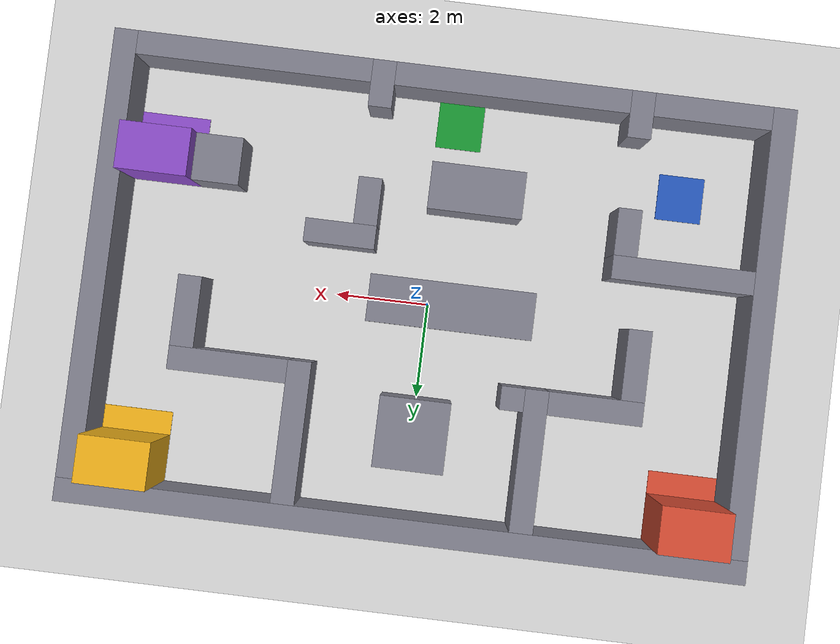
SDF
<?xml version="1.0" ?>
<sdf version="1.10">
  <world name="factory_maze">
    <physics name="step" type="ignored">
      <max_step_size>0.004</max_step_size>
      <real_time_factor>1.0</real_time_factor>
    </physics>
    <plugin filename="gz-sim-physics-system" name="gz::sim::systems::Physics"/>
    <plugin filename="gz-sim-scene-broadcaster-system" name="gz::sim::systems::SceneBroadcaster"/>
    <plugin filename="gz-sim-user-commands-system" name="gz::sim::systems::UserCommands"/>
    <plugin filename="gz-sim-contact-system" name="gz::sim::systems::Contact"/>
    <plugin filename="gz-sim-sensors-system" name="gz::sim::systems::Sensors">
      <render_engine>ogre2</render_engine>
    </plugin>
    <scene>
      <ambient>0.6 0.6 0.6 1</ambient>
      <background>0.7 0.8 0.9 1</background>
    </scene>
    <light type="directional" name="sun">
      <cast_shadows>true</cast_shadows>
      <pose>0 0 10 0 0 0</pose>
      <diffuse>0.9 0.9 0.9 1</diffuse>
      <specular>0.2 0.2 0.2 1</specular>
      <direction>-0.4 0.3 -0.9</direction>
    </light>
    <model name="ground_plane">
      <static>true</static>
      <link name="link">
        <collision name="collision">
          <geometry><plane><normal>0 0 1</normal><size>60 60</size></plane></geometry>
          <surface><friction><ode><mu>1.0</mu><mu2>1.0</mu2></ode></friction></surface>
        </collision>
        <visual name="visual">
          <geometry><plane><normal>0 0 1</normal><size>60 60</size></plane></geometry>
          <material><ambient>0.85 0.85 0.85 1</ambient><diffuse>0.85 0.85 0.85 1</diffuse></material>
        </visual>
      </link>
    </model>
    <model name='wall_0'><static>true</static><pose>0.000 4.750 0.500 0 0 0</pose><link name='l'><collision name='c'><geometry><box><size>14.500 0.500 1.000</size></box></geometry></collision><visual name='v'><geometry><box><size>14.500 0.500 1.000</size></box></geometry><material><ambient>0.5 0.5 0.55 1</ambient><diffuse>0.5 0.5 0.55 1</diffuse></material></visual></link></model>
    <model name='wall_1'><static>true</static><pose>-7.000 -0.250 0.500 0 0 0</pose><link name='l'><collision name='c'><geometry><box><size>0.500 9.500 1.000</size></box></geometry></collision><visual name='v'><geometry><box><size>0.500 9.500 1.000</size></box></geometry><material><ambient>0.5 0.5 0.55 1</ambient><diffuse>0.5 0.5 0.55 1</diffuse></material></visual></link></model>
    <model name='wall_2'><static>true</static><pose>-2.500 3.000 0.500 0 0 0</pose><link name='l'><collision name='c'><geometry><box><size>0.500 3.000 1.000</size></box></geometry></collision><visual name='v'><geometry><box><size>0.500 3.000 1.000</size></box></geometry><material><ambient>0.5 0.5 0.55 1</ambient><diffuse>0.5 0.5 0.55 1</diffuse></material></visual></link></model>
    <model name='wall_3'><static>true</static><pose>2.500 3.000 0.500 0 0 0</pose><link name='l'><collision name='c'><geometry><box><size>0.500 3.000 1.000</size></box></geometry></collision><visual name='v'><geometry><box><size>0.500 3.000 1.000</size></box></geometry><material><ambient>0.5 0.5 0.55 1</ambient><diffuse>0.5 0.5 0.55 1</diffuse></material></visual></link></model>
    <model name='wall_4'><static>true</static><pose>7.000 -0.250 0.500 0 0 0</pose><link name='l'><collision name='c'><geometry><box><size>0.500 9.500 1.000</size></box></geometry></collision><visual name='v'><geometry><box><size>0.500 9.500 1.000</size></box></geometry><material><ambient>0.5 0.5 0.55 1</ambient><diffuse>0.5 0.5 0.55 1</diffuse></material></visual></link></model>
    <model name='wall_5'><static>true</static><pose>0.000 2.750 0.500 0 0 0</pose><link name='l'><collision name='c'><geometry><box><size>1.500 1.500 1.000</size></box></geometry></collision><visual name='v'><geometry><box><size>1.500 1.500 1.000</size></box></geometry><material><ambient>0.5 0.5 0.55 1</ambient><diffuse>0.5 0.5 0.55 1</diffuse></material></visual></link></model>
    <model name='wall_6'><static>true</static><pose>-3.750 1.750 0.500 0 0 0</pose><link name='l'><collision name='c'><geometry><box><size>2.000 0.500 1.000</size></box></geometry></collision><visual name='v'><geometry><box><size>2.000 0.500 1.000</size></box></geometry><material><ambient>0.5 0.5 0.55 1</ambient><diffuse>0.5 0.5 0.55 1</diffuse></material></visual></link></model>
    <model name='wall_7'><static>true</static><pose>-2.000 1.750 0.500 0 0 0</pose><link name='l'><collision name='c'><geometry><box><size>0.500 0.500 1.000</size></box></geometry></collision><visual name='v'><geometry><box><size>0.500 0.500 1.000</size></box></geometry><material><ambient>0.5 0.5 0.55 1</ambient><diffuse>0.5 0.5 0.55 1</diffuse></material></visual></link></model>
    <model name='wall_8'><static>true</static><pose>4.000 1.750 0.500 0 0 0</pose><link name='l'><collision name='c'><geometry><box><size>2.500 0.500 1.000</size></box></geometry></collision><visual name='v'><geometry><box><size>2.500 0.500 1.000</size></box></geometry><material><ambient>0.5 0.5 0.55 1</ambient><diffuse>0.5 0.5 0.55 1</diffuse></material></visual></link></model>
    <model name='wall_9'><static>true</static><pose>-4.500 0.750 0.500 0 0 0</pose><link name='l'><collision name='c'><geometry><box><size>0.500 1.500 1.000</size></box></geometry></collision><visual name='v'><geometry><box><size>0.500 1.500 1.000</size></box></geometry><material><ambient>0.5 0.5 0.55 1</ambient><diffuse>0.5 0.5 0.55 1</diffuse></material></visual></link></model>
    <model name='wall_10'><static>true</static><pose>5.000 0.750 0.500 0 0 0</pose><link name='l'><collision name='c'><geometry><box><size>0.500 1.500 1.000</size></box></geometry></collision><visual name='v'><geometry><box><size>0.500 1.500 1.000</size></box></geometry><material><ambient>0.5 0.5 0.55 1</ambient><diffuse>0.5 0.5 0.55 1</diffuse></material></visual></link></model>
    <model name='wall_11'><static>true</static><pose>-0.500 0.000 0.500 0 0 0</pose><link name='l'><collision name='c'><geometry><box><size>3.500 1.000 1.000</size></box></geometry></collision><visual name='v'><geometry><box><size>3.500 1.000 1.000</size></box></geometry><material><ambient>0.5 0.5 0.55 1</ambient><diffuse>0.5 0.5 0.55 1</diffuse></material></visual></link></model>
    <model name='wall_12'><static>true</static><pose>-5.250 -1.250 0.500 0 0 0</pose><link name='l'><collision name='c'><geometry><box><size>3.000 0.500 1.000</size></box></geometry></collision><visual name='v'><geometry><box><size>3.000 0.500 1.000</size></box></geometry><material><ambient>0.5 0.5 0.55 1</ambient><diffuse>0.5 0.5 0.55 1</diffuse></material></visual></link></model>
    <model name='wall_13'><static>true</static><pose>2.000 -1.250 0.500 0 0 0</pose><link name='l'><collision name='c'><geometry><box><size>1.500 0.500 1.000</size></box></geometry></collision><visual name='v'><geometry><box><size>1.500 0.500 1.000</size></box></geometry><material><ambient>0.5 0.5 0.55 1</ambient><diffuse>0.5 0.5 0.55 1</diffuse></material></visual></link></model>
    <model name='wall_14'><static>true</static><pose>-4.000 -2.000 0.500 0 0 0</pose><link name='l'><collision name='c'><geometry><box><size>0.500 1.000 1.000</size></box></geometry></collision><visual name='v'><geometry><box><size>0.500 1.000 1.000</size></box></geometry><material><ambient>0.5 0.5 0.55 1</ambient><diffuse>0.5 0.5 0.55 1</diffuse></material></visual></link></model>
    <model name='wall_15'><static>true</static><pose>1.500 -2.000 0.500 0 0 0</pose><link name='l'><collision name='c'><geometry><box><size>0.500 1.000 1.000</size></box></geometry></collision><visual name='v'><geometry><box><size>0.500 1.000 1.000</size></box></geometry><material><ambient>0.5 0.5 0.55 1</ambient><diffuse>0.5 0.5 0.55 1</diffuse></material></visual></link></model>
    <model name='wall_16'><static>true</static><pose>-0.750 -2.500 0.500 0 0 0</pose><link name='l'><collision name='c'><geometry><box><size>2.000 1.000 1.000</size></box></geometry></collision><visual name='v'><geometry><box><size>2.000 1.000 1.000</size></box></geometry><material><ambient>0.5 0.5 0.55 1</ambient><diffuse>0.5 0.5 0.55 1</diffuse></material></visual></link></model>
    <model name='wall_17'><static>true</static><pose>4.750 -2.500 0.500 0 0 0</pose><link name='l'><collision name='c'><geometry><box><size>1.000 1.000 1.000</size></box></geometry></collision><visual name='v'><geometry><box><size>1.000 1.000 1.000</size></box></geometry><material><ambient>0.5 0.5 0.55 1</ambient><diffuse>0.5 0.5 0.55 1</diffuse></material></visual></link></model>
    <model name='wall_18'><static>true</static><pose>-4.000 -4.500 0.500 0 0 0</pose><link name='l'><collision name='c'><geometry><box><size>0.500 1.000 1.000</size></box></geometry></collision><visual name='v'><geometry><box><size>0.500 1.000 1.000</size></box></geometry><material><ambient>0.5 0.5 0.55 1</ambient><diffuse>0.5 0.5 0.55 1</diffuse></material></visual></link></model>
    <model name='wall_19'><static>true</static><pose>1.500 -4.500 0.500 0 0 0</pose><link name='l'><collision name='c'><geometry><box><size>0.500 1.000 1.000</size></box></geometry></collision><visual name='v'><geometry><box><size>0.500 1.000 1.000</size></box></geometry><material><ambient>0.5 0.5 0.55 1</ambient><diffuse>0.5 0.5 0.55 1</diffuse></material></visual></link></model>
    <model name='wall_20'><static>true</static><pose>-5.500 -4.750 0.500 0 0 0</pose><link name='l'><collision name='c'><geometry><box><size>2.500 0.500 1.000</size></box></geometry></collision><visual name='v'><geometry><box><size>2.500 0.500 1.000</size></box></geometry><material><ambient>0.5 0.5 0.55 1</ambient><diffuse>0.5 0.5 0.55 1</diffuse></material></visual></link></model>
    <model name='wall_21'><static>true</static><pose>-1.250 -4.750 0.500 0 0 0</pose><link name='l'><collision name='c'><geometry><box><size>5.000 0.500 1.000</size></box></geometry></collision><visual name='v'><geometry><box><size>5.000 0.500 1.000</size></box></geometry><material><ambient>0.5 0.5 0.55 1</ambient><diffuse>0.5 0.5 0.55 1</diffuse></material></visual></link></model>
    <model name='wall_22'><static>true</static><pose>4.250 -4.750 0.500 0 0 0</pose><link name='l'><collision name='c'><geometry><box><size>5.000 0.500 1.000</size></box></geometry></collision><visual name='v'><geometry><box><size>5.000 0.500 1.000</size></box></geometry><material><ambient>0.5 0.5 0.55 1</ambient><diffuse>0.5 0.5 0.55 1</diffuse></material></visual></link></model>
    <model name='machine_A_0'><static>true</static><pose>-6.000 4.000 0.700 0 0 0</pose><link name='l'><collision name='c'><geometry><box><size>1.500 1.000 1.400</size></box></geometry></collision><visual name='v'><geometry><box><size>1.500 1.000 1.400</size></box></geometry><material><ambient>0.85 0.3 0.2 1</ambient><diffuse>0.85 0.3 0.2 1</diffuse></material></visual></link></model>
    <model name='machine_B_1'><static>true</static><pose>6.000 4.000 0.700 0 0 0</pose><link name='l'><collision name='c'><geometry><box><size>1.500 1.000 1.400</size></box></geometry></collision><visual name='v'><geometry><box><size>1.500 1.000 1.400</size></box></geometry><material><ambient>0.95 0.7 0.1 1</ambient><diffuse>0.95 0.7 0.1 1</diffuse></material></visual></link></model>
    <model name='machine_C_2'><static>true</static><pose>6.000 -2.500 0.700 0 0 0</pose><link name='l'><collision name='c'><geometry><box><size>1.500 1.000 1.400</size></box></geometry></collision><visual name='v'><geometry><box><size>1.500 1.000 1.400</size></box></geometry><material><ambient>0.55 0.3 0.8 1</ambient><diffuse>0.55 0.3 0.8 1</diffuse></material></visual></link></model>
    <model name='pad_A_0'><static>true</static><pose>-6.000 3.250 0.005 0 0 0</pose><link name='l'><visual name='v'><geometry><box><size>1.500 0.500 0.010</size></box></geometry><material><ambient>0.85 0.3 0.2 1</ambient><diffuse>0.85 0.3 0.2 1</diffuse></material></visual></link></model>
    <model name='pad_B_0'><static>true</static><pose>6.000 3.250 0.005 0 0 0</pose><link name='l'><visual name='v'><geometry><box><size>1.500 0.500 0.010</size></box></geometry><material><ambient>0.95 0.7 0.1 1</ambient><diffuse>0.95 0.7 0.1 1</diffuse></material></visual></link></model>
    <model name='pad_C_0'><static>true</static><pose>6.000 -3.250 0.005 0 0 0</pose><link name='l'><visual name='v'><geometry><box><size>1.500 0.500 0.010</size></box></geometry><material><ambient>0.55 0.3 0.8 1</ambient><diffuse>0.55 0.3 0.8 1</diffuse></material></visual></link></model>
    <model name='pad_D_0'><static>true</static><pose>-0.250 -4.000 0.005 0 0 0</pose><link name='l'><visual name='v'><geometry><box><size>1.000 1.000 0.010</size></box></geometry><material><ambient>0.1 0.6 0.2 1</ambient><diffuse>0.1 0.6 0.2 1</diffuse></material></visual></link></model>
    <model name='pad_S_0'><static>true</static><pose>-5.250 -3.000 0.005 0 0 0</pose><link name='l'><visual name='v'><geometry><box><size>1.000 1.000 0.010</size></box></geometry><material><ambient>0.15 0.35 0.75 1</ambient><diffuse>0.15 0.35 0.75 1</diffuse></material></visual></link></model>
  </world>
</sdf>
